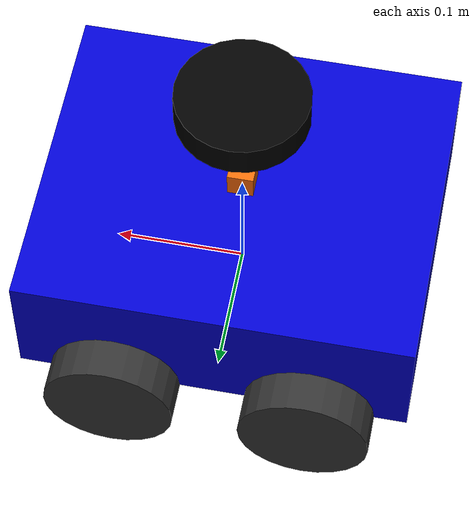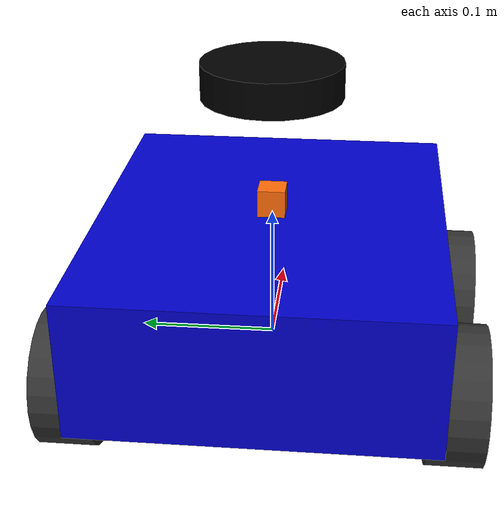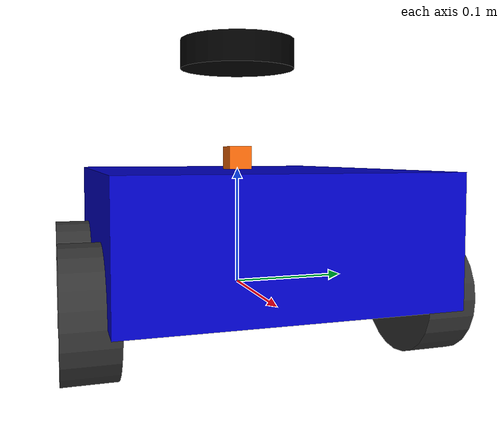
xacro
<?xml version="1.0"?>
<robot xmlns:xacro="http://www.ros.org/wiki/xacro" name="buraq">

  <!-- Include robot properties -->
  <xacro:include filename="$(find buraq_description)/urdf/buraq_properties.xacro" />

  <!-- Include wheel macro -->
  <xacro:include filename="$(find buraq_description)/urdf/wheel.xacro" />

  <!-- Include sensor macros -->
  <xacro:include filename="$(find buraq_description)/urdf/sensors.xacro" />

  <!-- Include ros2_control configuration -->
  <xacro:include filename="$(find buraq_description)/urdf/buraq_ros2_control.xacro" />

  <!-- Base Link -->
  <link name="base_link">
    <visual>
      <origin xyz="0 0 0" rpy="0 0 0" />
      <geometry>
        <box size="${base_length} ${base_width} ${base_height}" />
      </geometry>
      <material name="blue" />
    </visual>

    <collision>
      <origin xyz="0 0 0" rpy="0 0 0" />
      <geometry>
        <box size="${base_length} ${base_width} ${base_height}" />
      </geometry>
    </collision>

    <inertial>
      <mass value="${base_mass}" />
      <origin xyz="0 0 0" rpy="0 0 0" />
      <inertia
        ixx="${base_mass * (base_width * base_width + base_height * base_height) / 12}"
        iyy="${base_mass * (base_length * base_length + base_height * base_height) / 12}"
        izz="${base_mass * (base_length * base_length + base_width * base_width) / 12}"
        ixy="0.0" iyz="0.0" ixz="0.0" />
    </inertial>
  </link>

  <!-- Robot footprint link -->
  <link name="base_footprint" />

  <joint name="base_joint" type="fixed">
    <parent link="base_footprint" />
    <child link="base_link" />
    <origin xyz="0 0 ${wheel_radius}" rpy="0 0 0" />
  </joint>

  <!-- Wheels -->
  <xacro:wheel name="front_left" x_offset="${wheel_offset_x}" y_offset="${wheel_offset_y}" z_offset="${wheel_offset_z}" flip="1" />
  <xacro:wheel name="front_right" x_offset="${wheel_offset_x}" y_offset="${wheel_offset_y}" z_offset="${wheel_offset_z}" flip="-1" />
  <xacro:wheel name="rear_left" x_offset="-${wheel_offset_x}" y_offset="${wheel_offset_y}" z_offset="${wheel_offset_z}" flip="1" />
  <xacro:wheel name="rear_right" x_offset="-${wheel_offset_x}" y_offset="${wheel_offset_y}" z_offset="${wheel_offset_z}" flip="-1" />

  <!-- IMU -->
  <xacro:imu_sensor name="imu" />

  <!-- LiDAR -->
  <xacro:lidar_sensor name="lidar" />

  <!-- ROS2 Control -->
  <xacro:buraq_ros2_control name="BuraqRobot" prefix="" />
</robot>

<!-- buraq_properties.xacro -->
<robot xmlns:xacro="http://www.ros.org/wiki/xacro">

  <!-- Robot Dimensions -->
  <xacro:property name="base_length" value="0.3" />
  <xacro:property name="base_width" value="0.25" />
  <xacro:property name="base_height" value="0.1" />
  <xacro:property name="base_mass" value="2.5" />

  <!-- Wheel Properties -->
  <xacro:property name="wheel_radius" value="0.05" />
  <xacro:property name="wheel_width" value="0.04" />
  <xacro:property name="wheel_mass" value="0.3" />
  <xacro:property name="wheel_offset_x" value="${base_length/4}" />
  <xacro:property name="wheel_offset_y" value="${base_width/2 + wheel_width/4}" />
  <xacro:property name="wheel_offset_z" value="-${base_height/2}" />

  <!-- Caster Properties (if needed) -->
  <xacro:property name="caster_radius" value="0.02" />
  <xacro:property name="caster_mass" value="0.1" />

  <!-- Sensor Properties -->
  <xacro:property name="lidar_size" value="0.05" />
  <xacro:property name="lidar_mass" value="0.1" />
  <xacro:property name="lidar_height" value="0.1" />

  <!-- IMU Properties -->
  <xacro:property name="imu_size" value="0.02" />
  <xacro:property name="imu_mass" value="0.01" />

  <!-- Joint Properties -->
  <xacro:property name="wheel_joint_damping" value="0.1" />
  <xacro:property name="wheel_joint_friction" value="0.1" />

  <!-- Colors -->
  <material name="black">
    <color rgba="0.0 0.0 0.0 1.0"/>
  </material>

  <material name="blue">
    <color rgba="0.0 0.0 0.8 1.0"/>
  </material>

  <material name="green">
    <color rgba="0.0 0.8 0.0 1.0"/>
  </material>

  <material name="grey">
    <color rgba="0.2 0.2 0.2 1.0"/>
  </material>

  <material name="orange">
    <color rgba="1.0 0.423529411765 0.0392156862745 1.0"/>
  </material>

  <material name="brown">
    <color rgba="0.870588235294 0.811764705882 0.764705882353 1.0"/>
  </material>

  <material name="red">
    <color rgba="0.8 0.0 0.0 1.0"/>
  </material>

  <material name="white">
    <color rgba="1.0 1.0 1.0 1.0"/>
  </material>
</robot>

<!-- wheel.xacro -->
<robot xmlns:xacro="http://www.ros.org/wiki/xacro">

  <!-- Wheel Macro -->
  <xacro:macro name="wheel" params="name x_offset y_offset z_offset flip">
    <link name="${name}_wheel_link">
      <visual>
        <origin xyz="0 0 0" rpy="${pi/2} 0 0" />
        <geometry>
          <cylinder radius="${wheel_radius}" length="${wheel_width}" />
        </geometry>
        <material name="grey" />
      </visual>

      <collision>
        <origin xyz="0 0 0" rpy="${pi/2} 0 0" />
        <geometry>
          <cylinder radius="${wheel_radius}" length="${wheel_width}" />
        </geometry>
      </collision>

      <inertial>
        <mass value="${wheel_mass}" />
        <origin xyz="0 0 0" rpy="${pi/2} 0 0" />
        <inertia
          ixx="${wheel_mass * (3 * wheel_radius * wheel_radius + wheel_width * wheel_width) / 12}"
          iyy="${wheel_mass * (3 * wheel_radius * wheel_radius + wheel_width * wheel_width) / 12}"
          izz="${wheel_mass * wheel_radius * wheel_radius / 2}"
          ixy="0.0" iyz="0.0" ixz="0.0" />
      </inertial>
    </link>

    <joint name="${name}_wheel_joint" type="continuous">
      <parent link="base_link" />
      <child link="${name}_wheel_link" />
      <origin xyz="${x_offset} ${y_offset * flip} ${z_offset}" rpy="0 0 0" />
      <axis xyz="0 1 0" />
      <dynamics damping="${wheel_joint_damping}" friction="${wheel_joint_friction}" />
    </joint>

  </xacro:macro>
</robot>

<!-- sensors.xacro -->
<robot xmlns:xacro="http://www.ros.org/wiki/xacro">

  <!-- IMU Sensor Macro -->
  <xacro:macro name="imu_sensor" params="name">
    <link name="${name}_link">
      <visual>
        <origin xyz="0 0 0" rpy="0 0 0" />
        <geometry>
          <box size="${imu_size} ${imu_size} ${imu_size}" />
        </geometry>
        <material name="orange" />
      </visual>

      <collision>
        <origin xyz="0 0 0" rpy="0 0 0" />
        <geometry>
          <box size="${imu_size} ${imu_size} ${imu_size}" />
        </geometry>
      </collision>

      <inertial>
        <mass value="${imu_mass}" />
        <origin xyz="0 0 0" rpy="0 0 0" />
        <inertia
          ixx="${imu_mass * (imu_size * imu_size) / 6}"
          iyy="${imu_mass * (imu_size * imu_size) / 6}"
          izz="${imu_mass * (imu_size * imu_size) / 6}"
          ixy="0.0" iyz="0.0" ixz="0.0" />
      </inertial>
    </link>

    <joint name="${name}_joint" type="fixed">
      <parent link="base_link" />
      <child link="${name}_link" />
      <origin xyz="0 0 ${base_height/2 + imu_size/2}" rpy="0 0 0" />
    </joint>

  </xacro:macro>

  <!-- LiDAR Sensor Macro -->
  <xacro:macro name="lidar_sensor" params="name">
    <link name="${name}_link">
      <visual>
        <origin xyz="0 0 0" rpy="0 0 0" />
        <geometry>
          <cylinder radius="${lidar_size}" length="${lidar_size/2}" />
        </geometry>
        <material name="black" />
      </visual>

      <collision>
        <origin xyz="0 0 0" rpy="0 0 0" />
        <geometry>
          <cylinder radius="${lidar_size}" length="${lidar_size/2}" />
        </geometry>
      </collision>

      <inertial>
        <mass value="${lidar_mass}" />
        <origin xyz="0 0 0" rpy="0 0 0" />
        <inertia
          ixx="${lidar_mass * (3 * lidar_size * lidar_size + (lidar_size/2) * (lidar_size/2)) / 12}"
          iyy="${lidar_mass * (3 * lidar_size * lidar_size + (lidar_size/2) * (lidar_size/2)) / 12}"
          izz="${lidar_mass * lidar_size * lidar_size / 2}"
          ixy="0.0" iyz="0.0" ixz="0.0" />
      </inertial>
    </link>

    <joint name="${name}_joint" type="fixed">
      <parent link="base_link" />
      <child link="${name}_link" />
      <origin xyz="0 0 ${base_height/2 + lidar_height}" rpy="0 0 0" />
    </joint>

  </xacro:macro>
</robot>
